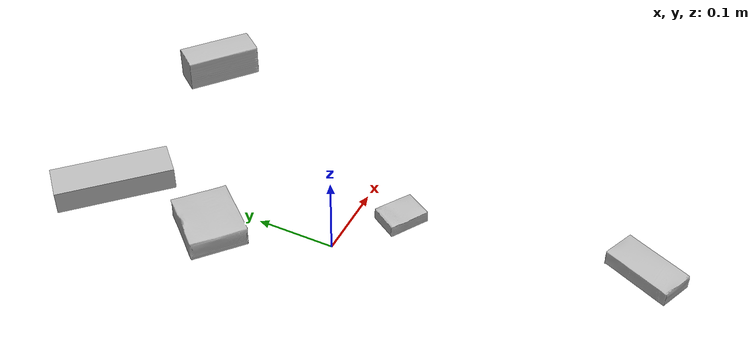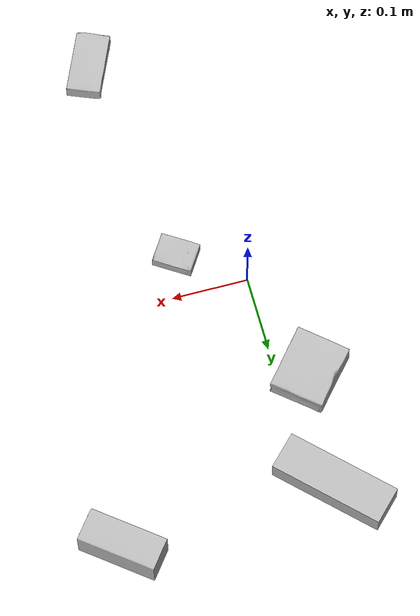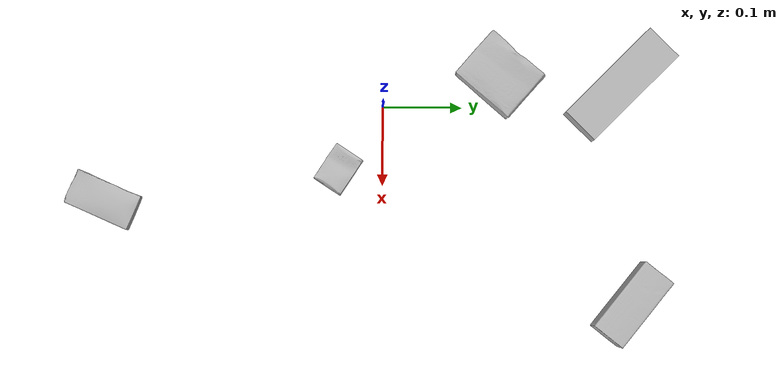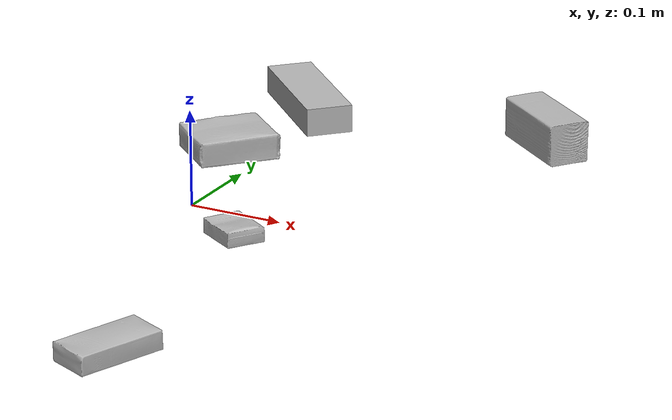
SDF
<sdf version="1.4">
  <world name="default">
    <light name="light1" type="point">
      <pose>0 0 1 0 0 0</pose>
      <diffuse>3 3 3 1</diffuse>
      <specular>3 3 3 1</specular>
    </light>
    <light name="light2" type="point">
      <pose>0 0.5 2 0 0 0</pose>
      <diffuse>1 1 1 1</diffuse>
      <specular>1 1 1 1</specular>
    </light>
    <light name="light3" type="point">
      <pose>0 0.5 2 0 0 0</pose>
      <diffuse>3 3 3 1</diffuse>
      <specular>3 3 3 1</specular>
    </light>
    <scene>
      <ambient>0.7 0.7 0.7</ambient>
    </scene>
    <model name="box1">
      <link name="link_box1">
        <collision name="default">
          <geometry>
            <mesh>
              <uri>model://sugar_box/collision_meshes/collision.obj</uri>
              <scale>0.5 0.5 0.5</scale>
            </mesh>
          </geometry>
          <surface>
            <friction>
              <ode>
                <mu>0.5</mu>
                <mu2>0.5</mu2>
              </ode>
            </friction>
          <contact>
        <ode>
            <max_vel>0</max_vel>
            <min_depth>0.0001</min_depth>
            <kp>1e8</kp>
        </ode>
    </contact></surface>
        </collision>
        <visual name="default">
          <geometry>
            <mesh>
              <uri>model://sugar_box/visual_meshes/visual.dae</uri>
              <scale>0.5 0.5 0.5</scale>
            </mesh>
          </geometry>
        </visual>
        <inertial>
          <mass>0.05016465485095978</mass>
          <pose>0.0005171863595023751 1.924554817378521e-05 -0.0001818240125430748 -0.00040462615463102695 0.0010506635220671036 0.0026153792546614123</pose>
          <inertia>
            <ixx>1.0449262e-05</ixx>
            <iyy>3.3774166e-05</iyy>
            <izz>4.0431696e-05</izz>
            <ixy>0</ixy>
            <ixz>0</ixz>
            <iyz>0</iyz>
          </inertia>
        </inertial>
      </link>
      <pose>0.12105298042297363 -0.3508341312408447 0.011399303562939167 0.0007752743653079756 -0.02343325655712922 1.1587175414002275</pose>
    </model>
    <model name="box2">
      <link name="link_box2">
        <collision name="default">
          <geometry>
            <mesh>
              <uri>model://cracker_box/collision_meshes/collision.obj</uri>
              <scale>0.25 0.25 0.25</scale>
            </mesh>
          </geometry>
          <surface>
            <friction>
              <ode>
                <mu>0.5</mu>
                <mu2>0.5</mu2>
              </ode>
            </friction>
          <contact>
        <ode>
            <max_vel>0</max_vel>
            <min_depth>0.0001</min_depth>
            <kp>1e8</kp>
        </ode>
    </contact></surface>
        </collision>
        <visual name="default">
          <geometry>
            <mesh>
              <uri>model://cracker_box/visual_meshes/visual.dae</uri>
              <scale>0.25 0.25 0.25</scale>
            </mesh>
          </geometry>
        </visual>
        <inertial>
          <mass>0.05325852707028389</mass>
          <pose>0.0002366033149883151 6.358561950037256e-05 -0.0004257383698131889 -0.000316207624135088 -0.011106486806293444 0.0025467950014945295</pose>
          <inertia>
            <ixx>8.46662e-06</ixx>
            <iyy>1.3980052e-05</iyy>
            <izz>1.995082e-05</izz>
            <ixy>0</ixy>
            <ixz>0</ixz>
            <iyz>0</iyz>
          </inertia>
        </inertial>
      </link>
      <pose>0.08000107109546661 -0.05536804348230362 0.009120450355112553 -0.011787960901721576 -0.007367230178832736 -0.5763392633686387</pose>
    </model>
    <model name="box3">
      <link name="link_box3">
        <collision name="default">
          <geometry>
            <mesh>
              <uri>model://wood_block/collision_meshes/collision.obj</uri>
              <scale>0.5 0.5 0.5</scale>
            </mesh>
          </geometry>
          <surface>
            <friction>
              <ode>
                <mu>0.5</mu>
                <mu2>0.5</mu2>
              </ode>
            </friction>
          <contact>
        <ode>
            <max_vel>0</max_vel>
            <min_depth>0.0001</min_depth>
            <kp>1e8</kp>
        </ode>
    </contact></surface>
        </collision>
        <visual name="default">
          <geometry>
            <mesh>
              <uri>model://wood_block/visual_meshes/visual.dae</uri>
              <scale>0.5 0.5 0.5</scale>
            </mesh>
          </geometry>
        </visual>
        <inertial>
          <mass>0.24977724254131317</mass>
          <pose>-2.9066577553749084e-06 -0.00028540476341731846 0.00013204291462898254 -0.05220975529066727 -0.005192695547513155 -0.006861377927637377</pose>
          <inertia>
            <ixx>8.355995e-05</ixx>
            <iyy>0.00026396586</iyy>
            <izz>0.00026297852</izz>
            <ixy>0</ixy>
            <ixz>0</ixz>
            <iyz>0</iyz>
          </inertia>
        </inertial>
      </link>
      <pose>0.2462131828069687 0.3119267225265503 0.022629259154200554 -0.005208472316816388 0.005718758193072314 -0.664448173911017</pose>
    </model>
    <model name="box4">
      <link name="link_box4">
        <collision name="default">
          <geometry>
            <mesh>
              <uri>model://gelatin_box/collision_meshes/collision.obj</uri>
              <scale>1.0 1.0 1.0</scale>
            </mesh>
          </geometry>
          <surface>
            <friction>
              <ode>
                <mu>0.5</mu>
                <mu2>0.5</mu2>
              </ode>
            </friction>
          <contact>
        <ode>
            <max_vel>0</max_vel>
            <min_depth>0.0001</min_depth>
            <kp>1e8</kp>
        </ode>
    </contact></surface>
        </collision>
        <visual name="default">
          <geometry>
            <mesh>
              <uri>model://gelatin_box/visual_meshes/visual.dae</uri>
              <scale>1.0 1.0 1.0</scale>
            </mesh>
          </geometry>
        </visual>
        <inertial>
          <mass>0.142814502120018</mass>
          <pose>0.0004319618456065655 0.00011156871187267825 -0.0003640321083366871 -0.0010503719804291966 -0.004755819155973465 0.01644055947187314</pose>
          <inertia>
            <ixx>0.000100815385</ixx>
            <iyy>7.20119e-05</iyy>
            <izz>0.00015346348</izz>
            <ixy>0</ixy>
            <ixz>0</ixz>
            <iyz>0</iyz>
          </inertia>
        </inertial>
      </link>
      <pose>-0.040897250175476074 0.1471022516489029 0.01516831386834383 0.005597412951144039 -0.0073045029713624254 2.4229395844279407</pose>
    </model>
    <model name="box5">
      <link name="link_box5">
        <collision name="default">
          <geometry>
            <mesh>
              <uri>model://jenga/collision_meshes/collision.obj</uri>
              <scale>1.0 1.0 1.0</scale>
            </mesh>
          </geometry>
          <surface>
            <friction>
              <ode>
                <mu>0.5</mu>
                <mu2>0.5</mu2>
              </ode>
            </friction>
          <contact>
        <ode>
            <max_vel>0</max_vel>
            <min_depth>0.0001</min_depth>
            <kp>1e8</kp>
        </ode>
    </contact></surface>
        </collision>
        <visual name="default">
          <geometry>
            <mesh>
              <uri>model://jenga/visual_meshes/visual.dae</uri>
              <scale>1.0 1.0 1.0</scale>
            </mesh>
          </geometry>
        </visual>
        <inertial>
          <mass>0.11303283274173737</mass>
          <pose>-2.502855807051674e-07 -0.00010250010382151231 -4.0923401684267446e-05 0.0 -7.342155186052628e-07 0.0</pose>
          <inertia>
            <ixx>3.127893e-05</ixx>
            <iyy>0.00021194515</iyy>
            <izz>0.00022626946</izz>
            <ixy>0</ixy>
            <ixz>0</ixz>
            <iyz>0</iyz>
          </inertia>
        </inertial>
      </link>
      <pose>-0.029384659603238106 0.29943105578422546 0.015000001527369022 2.6226163204394686e-09 5.695477413517856e-10 2.362227483122124</pose>
    </model>
  <physics type="ode">
      <max_contacts>50</max_contacts>
      <ode>
        <solver>
          <type>quick</type>
          <iters>75</iters>
        </solver>
        <constraints>
          <contact_max_correcting_vel>0</contact_max_correcting_vel>
          <contact_surface_layer>0</contact_surface_layer>
        </constraints>
      </ode>
    </physics></world>
</sdf>
